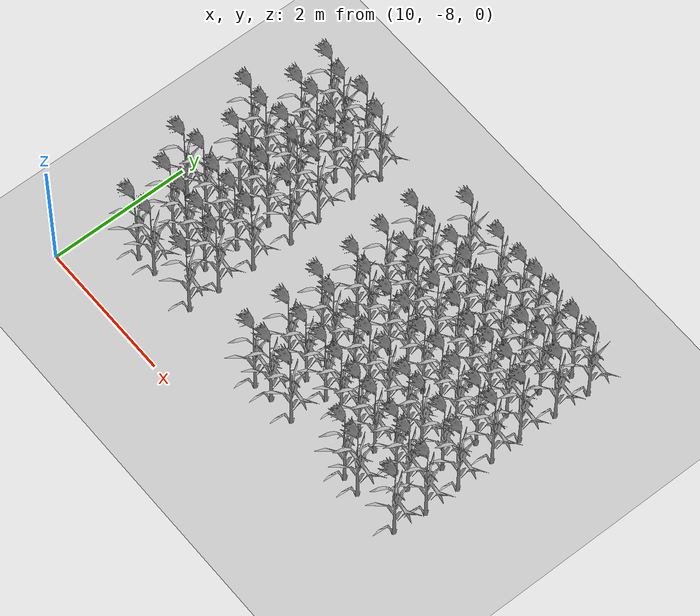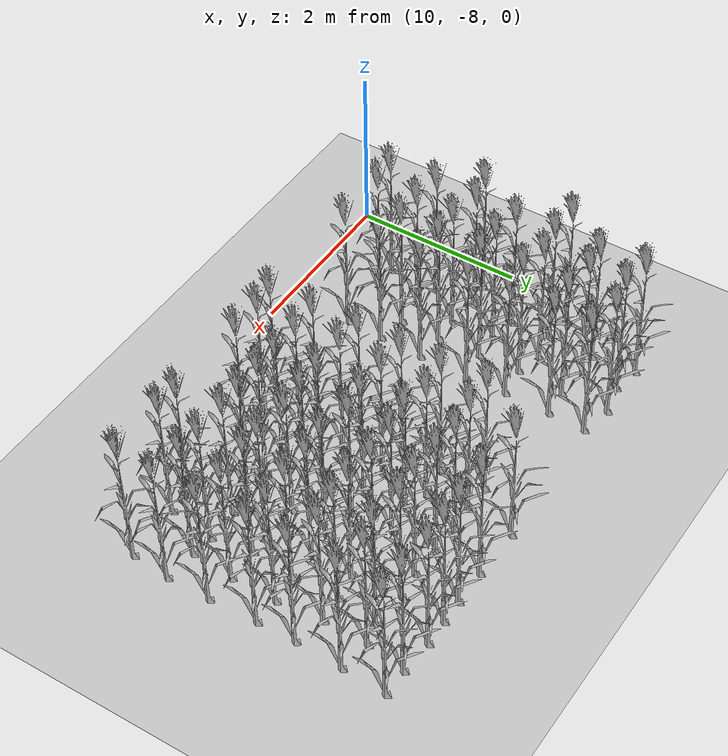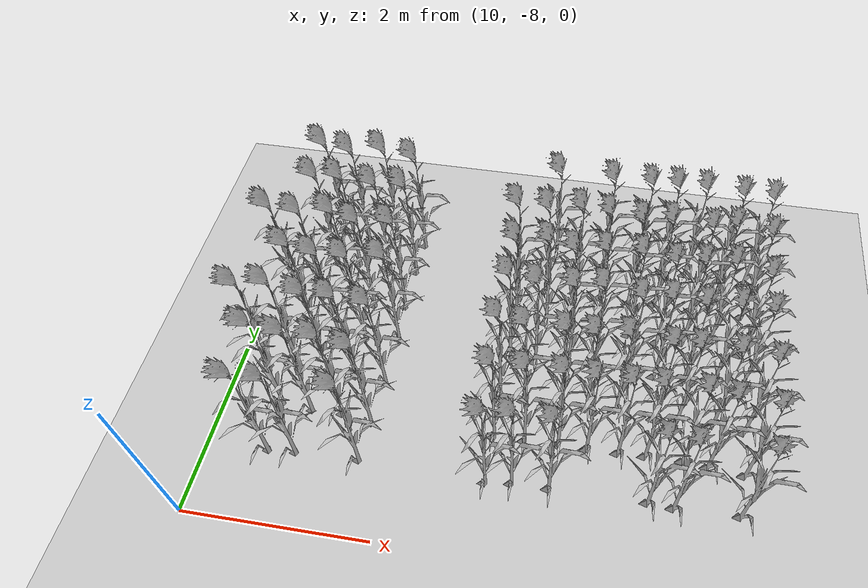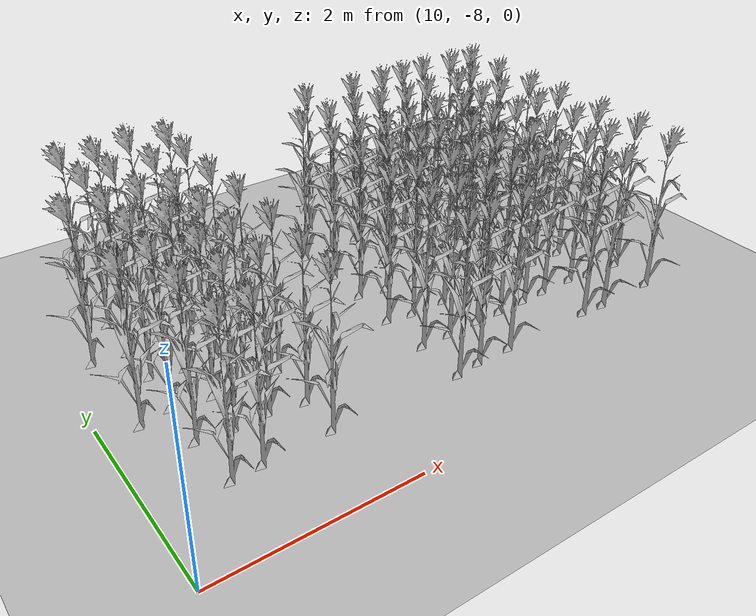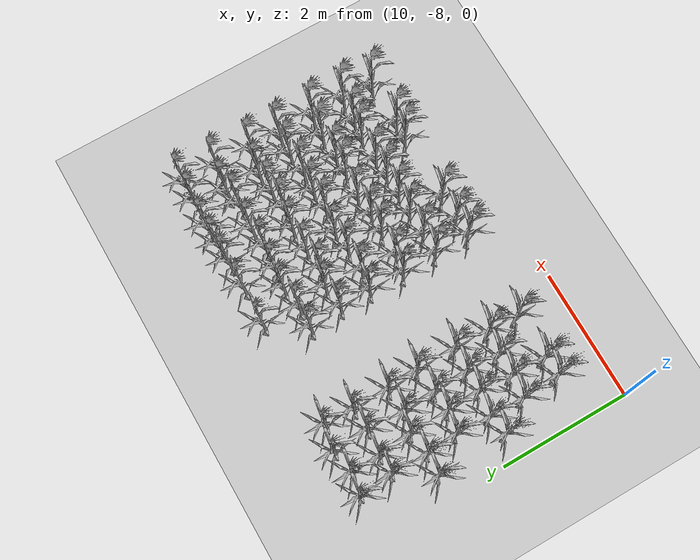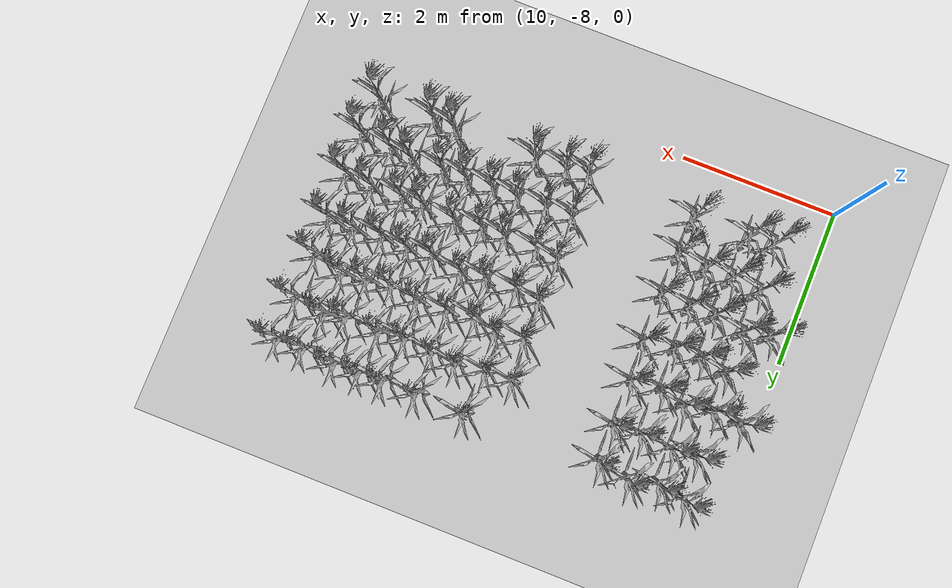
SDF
<sdf version="1.7">
 <world name="farmland_world">
  <model name="ground_plane">
   <static>1</static>
   <link name="link">
    <collision name="collision">
     <geometry><plane><normal>0 0 1</normal><size>40.0 40.0</size></plane></geometry>
     <surface><friction><ode><mu>100</mu><mu2>50</mu2></ode></friction></surface>
    </collision>
    <visual name="visual">
     <cast_shadows>0</cast_shadows>
     <geometry><plane><normal>0 0 1</normal><size>40.0 40.0</size></plane></geometry>
     <material>
      <script><uri>file://media/materials/scripts/gazebo.material</uri><name>Gazebo/Grey</name></script>
     </material>
    </visual>
   </link>
  </model>
  <model name="tree_3_396">
   <static>1</static>
   <link name="link">
    <collision name="collision">
     <geometry><mesh><uri>model://Corn_low_poly/corn.obj</uri><scale>1 1 1</scale></mesh></geometry>
     <surface><friction><ode><mu>100</mu><mu2>50</mu2></ode></friction></surface>
    </collision>
    <visual name="visual">
     <geometry><mesh><uri>model://Corn_low_poly/corn.obj</uri><scale>1 1 1</scale></mesh></geometry>
    </visual>
   </link>
   <pose>10.336218048798484 -5.094200831222233 0 0 0 0</pose>
  </model>
  <model name="tree_3_398">
   <static>1</static>
   <link name="link">
    <collision name="collision">
     <geometry><mesh><uri>model://Corn_low_poly/corn.obj</uri><scale>1 1 1</scale></mesh></geometry>
     <surface><friction><ode><mu>100</mu><mu2>50</mu2></ode></friction></surface>
    </collision>
    <visual name="visual">
     <geometry><mesh><uri>model://Corn_low_poly/corn.obj</uri><scale>1 1 1</scale></mesh></geometry>
    </visual>
   </link>
   <pose>10.364978905124246 -6.165531349344927 0 0 0 0</pose>
  </model>
  <model name="tree_3_424">
   <static>1</static>
   <link name="link">
    <collision name="collision">
     <geometry><mesh><uri>model://Corn_low_poly/corn.obj</uri><scale>1 1 1</scale></mesh></geometry>
     <surface><friction><ode><mu>100</mu><mu2>50</mu2></ode></friction></surface>
    </collision>
    <visual name="visual">
     <geometry><mesh><uri>model://Corn_low_poly/corn.obj</uri><scale>1 1 1</scale></mesh></geometry>
    </visual>
   </link>
   <pose>10.639512016288315 -4.056937963619303 0 0 0 0</pose>
  </model>
  <model name="tree_3_425">
   <static>1</static>
   <link name="link">
    <collision name="collision">
     <geometry><mesh><uri>model://Corn_low_poly/corn.obj</uri><scale>1 1 1</scale></mesh></geometry>
     <surface><friction><ode><mu>100</mu><mu2>50</mu2></ode></friction></surface>
    </collision>
    <visual name="visual">
     <geometry><mesh><uri>model://Corn_low_poly/corn.obj</uri><scale>1 1 1</scale></mesh></geometry>
    </visual>
   </link>
   <pose>10.685194346930286 -4.572476451612262 0 0 0 0</pose>
  </model>
  <model name="tree_3_426">
   <static>1</static>
   <link name="link">
    <collision name="collision">
     <geometry><mesh><uri>model://Corn_low_poly/corn.obj</uri><scale>1 1 1</scale></mesh></geometry>
     <surface><friction><ode><mu>100</mu><mu2>50</mu2></ode></friction></surface>
    </collision>
    <visual name="visual">
     <geometry><mesh><uri>model://Corn_low_poly/corn.obj</uri><scale>1 1 1</scale></mesh></geometry>
    </visual>
   </link>
   <pose>10.66991355195906 -5.120161488890562 0 0 0 0</pose>
  </model>
  <model name="tree_3_427">
   <static>1</static>
   <link name="link">
    <collision name="collision">
     <geometry><mesh><uri>model://Corn_low_poly/corn.obj</uri><scale>1 1 1</scale></mesh></geometry>
     <surface><friction><ode><mu>100</mu><mu2>50</mu2></ode></friction></surface>
    </collision>
    <visual name="visual">
     <geometry><mesh><uri>model://Corn_low_poly/corn.obj</uri><scale>1 1 1</scale></mesh></geometry>
    </visual>
   </link>
   <pose>10.699663897577226 -5.585120610117044 0 0 0 0</pose>
  </model>
  <model name="tree_3_428">
   <static>1</static>
   <link name="link">
    <collision name="collision">
     <geometry><mesh><uri>model://Corn_low_poly/corn.obj</uri><scale>1 1 1</scale></mesh></geometry>
     <surface><friction><ode><mu>100</mu><mu2>50</mu2></ode></friction></surface>
    </collision>
    <visual name="visual">
     <geometry><mesh><uri>model://Corn_low_poly/corn.obj</uri><scale>1 1 1</scale></mesh></geometry>
    </visual>
   </link>
   <pose>10.670386180392148 -6.099256254528978 0 0 0 0</pose>
  </model>
  <model name="tree_3_429">
   <static>1</static>
   <link name="link">
    <collision name="collision">
     <geometry><mesh><uri>model://Corn_low_poly/corn.obj</uri><scale>1 1 1</scale></mesh></geometry>
     <surface><friction><ode><mu>100</mu><mu2>50</mu2></ode></friction></surface>
    </collision>
    <visual name="visual">
     <geometry><mesh><uri>model://Corn_low_poly/corn.obj</uri><scale>1 1 1</scale></mesh></geometry>
    </visual>
   </link>
   <pose>10.66219176854286 -6.614461511317841 0 0 0 0</pose>
  </model>
  <model name="tree_3_430">
   <static>1</static>
   <link name="link">
    <collision name="collision">
     <geometry><mesh><uri>model://Corn_low_poly/corn.obj</uri><scale>1 1 1</scale></mesh></geometry>
     <surface><friction><ode><mu>100</mu><mu2>50</mu2></ode></friction></surface>
    </collision>
    <visual name="visual">
     <geometry><mesh><uri>model://Corn_low_poly/corn.obj</uri><scale>1 1 1</scale></mesh></geometry>
    </visual>
   </link>
   <pose>10.696855201788944 -7.192757625046726 0 0 0 0</pose>
  </model>
  <model name="tree_3_454">
   <static>1</static>
   <link name="link">
    <collision name="collision">
     <geometry><mesh><uri>model://Corn_low_poly/corn.obj</uri><scale>1 1 1</scale></mesh></geometry>
     <surface><friction><ode><mu>100</mu><mu2>50</mu2></ode></friction></surface>
    </collision>
    <visual name="visual">
     <geometry><mesh><uri>model://Corn_low_poly/corn.obj</uri><scale>1 1 1</scale></mesh></geometry>
    </visual>
   </link>
   <pose>10.9648317063201 -4.11793145990108 0 0 0 0</pose>
  </model>
  <model name="tree_3_455">
   <static>1</static>
   <link name="link">
    <collision name="collision">
     <geometry><mesh><uri>model://Corn_low_poly/corn.obj</uri><scale>1 1 1</scale></mesh></geometry>
     <surface><friction><ode><mu>100</mu><mu2>50</mu2></ode></friction></surface>
    </collision>
    <visual name="visual">
     <geometry><mesh><uri>model://Corn_low_poly/corn.obj</uri><scale>1 1 1</scale></mesh></geometry>
    </visual>
   </link>
   <pose>10.964125095030173 -4.545629775538938 0 0 0 0</pose>
  </model>
  <model name="tree_3_456">
   <static>1</static>
   <link name="link">
    <collision name="collision">
     <geometry><mesh><uri>model://Corn_low_poly/corn.obj</uri><scale>1 1 1</scale></mesh></geometry>
     <surface><friction><ode><mu>100</mu><mu2>50</mu2></ode></friction></surface>
    </collision>
    <visual name="visual">
     <geometry><mesh><uri>model://Corn_low_poly/corn.obj</uri><scale>1 1 1</scale></mesh></geometry>
    </visual>
   </link>
   <pose>11.01583983888011 -5.057956603693425 0 0 0 0</pose>
  </model>
  <model name="tree_3_457">
   <static>1</static>
   <link name="link">
    <collision name="collision">
     <geometry><mesh><uri>model://Corn_low_poly/corn.obj</uri><scale>1 1 1</scale></mesh></geometry>
     <surface><friction><ode><mu>100</mu><mu2>50</mu2></ode></friction></surface>
    </collision>
    <visual name="visual">
     <geometry><mesh><uri>model://Corn_low_poly/corn.obj</uri><scale>1 1 1</scale></mesh></geometry>
    </visual>
   </link>
   <pose>11.022003131946292 -5.649713077679194 0 0 0 0</pose>
  </model>
  <model name="tree_3_458">
   <static>1</static>
   <link name="link">
    <collision name="collision">
     <geometry><mesh><uri>model://Corn_low_poly/corn.obj</uri><scale>1 1 1</scale></mesh></geometry>
     <surface><friction><ode><mu>100</mu><mu2>50</mu2></ode></friction></surface>
    </collision>
    <visual name="visual">
     <geometry><mesh><uri>model://Corn_low_poly/corn.obj</uri><scale>1 1 1</scale></mesh></geometry>
    </visual>
   </link>
   <pose>11.048762684720245 -6.1627331046480345 0 0 0 0</pose>
  </model>
  <model name="tree_3_459">
   <static>1</static>
   <link name="link">
    <collision name="collision">
     <geometry><mesh><uri>model://Corn_low_poly/corn.obj</uri><scale>1 1 1</scale></mesh></geometry>
     <surface><friction><ode><mu>100</mu><mu2>50</mu2></ode></friction></surface>
    </collision>
    <visual name="visual">
     <geometry><mesh><uri>model://Corn_low_poly/corn.obj</uri><scale>1 1 1</scale></mesh></geometry>
    </visual>
   </link>
   <pose>11.00923089931044 -6.652047315434077 0 0 0 0</pose>
  </model>
  <model name="tree_3_460">
   <static>1</static>
   <link name="link">
    <collision name="collision">
     <geometry><mesh><uri>model://Corn_low_poly/corn.obj</uri><scale>1 1 1</scale></mesh></geometry>
     <surface><friction><ode><mu>100</mu><mu2>50</mu2></ode></friction></surface>
    </collision>
    <visual name="visual">
     <geometry><mesh><uri>model://Corn_low_poly/corn.obj</uri><scale>1 1 1</scale></mesh></geometry>
    </visual>
   </link>
   <pose>10.990459883604906 -7.172170484243245 0 0 0 0</pose>
  </model>
  <model name="tree_3_484">
   <static>1</static>
   <link name="link">
    <collision name="collision">
     <geometry><mesh><uri>model://Corn_low_poly/corn.obj</uri><scale>1 1 1</scale></mesh></geometry>
     <surface><friction><ode><mu>100</mu><mu2>50</mu2></ode></friction></surface>
    </collision>
    <visual name="visual">
     <geometry><mesh><uri>model://Corn_low_poly/corn.obj</uri><scale>1 1 1</scale></mesh></geometry>
    </visual>
   </link>
   <pose>11.323679801329236 -4.040140490413209 0 0 0 0</pose>
  </model>
  <model name="tree_3_485">
   <static>1</static>
   <link name="link">
    <collision name="collision">
     <geometry><mesh><uri>model://Corn_low_poly/corn.obj</uri><scale>1 1 1</scale></mesh></geometry>
     <surface><friction><ode><mu>100</mu><mu2>50</mu2></ode></friction></surface>
    </collision>
    <visual name="visual">
     <geometry><mesh><uri>model://Corn_low_poly/corn.obj</uri><scale>1 1 1</scale></mesh></geometry>
    </visual>
   </link>
   <pose>11.358111137347528 -4.5797726042161875 0 0 0 0</pose>
  </model>
  <model name="tree_3_486">
   <static>1</static>
   <link name="link">
    <collision name="collision">
     <geometry><mesh><uri>model://Corn_low_poly/corn.obj</uri><scale>1 1 1</scale></mesh></geometry>
     <surface><friction><ode><mu>100</mu><mu2>50</mu2></ode></friction></surface>
    </collision>
    <visual name="visual">
     <geometry><mesh><uri>model://Corn_low_poly/corn.obj</uri><scale>1 1 1</scale></mesh></geometry>
    </visual>
   </link>
   <pose>11.314591748215598 -5.145585300931483 0 0 0 0</pose>
  </model>
  <model name="tree_3_487">
   <static>1</static>
   <link name="link">
    <collision name="collision">
     <geometry><mesh><uri>model://Corn_low_poly/corn.obj</uri><scale>1 1 1</scale></mesh></geometry>
     <surface><friction><ode><mu>100</mu><mu2>50</mu2></ode></friction></surface>
    </collision>
    <visual name="visual">
     <geometry><mesh><uri>model://Corn_low_poly/corn.obj</uri><scale>1 1 1</scale></mesh></geometry>
    </visual>
   </link>
   <pose>11.340558021921161 -5.636150073698883 0 0 0 0</pose>
  </model>
  <model name="tree_3_488">
   <static>1</static>
   <link name="link">
    <collision name="collision">
     <geometry><mesh><uri>model://Corn_low_poly/corn.obj</uri><scale>1 1 1</scale></mesh></geometry>
     <surface><friction><ode><mu>100</mu><mu2>50</mu2></ode></friction></surface>
    </collision>
    <visual name="visual">
     <geometry><mesh><uri>model://Corn_low_poly/corn.obj</uri><scale>1 1 1</scale></mesh></geometry>
    </visual>
   </link>
   <pose>11.356837048338853 -6.153516317012827 0 0 0 0</pose>
  </model>
  <model name="tree_3_489">
   <static>1</static>
   <link name="link">
    <collision name="collision">
     <geometry><mesh><uri>model://Corn_low_poly/corn.obj</uri><scale>1 1 1</scale></mesh></geometry>
     <surface><friction><ode><mu>100</mu><mu2>50</mu2></ode></friction></surface>
    </collision>
    <visual name="visual">
     <geometry><mesh><uri>model://Corn_low_poly/corn.obj</uri><scale>1 1 1</scale></mesh></geometry>
    </visual>
   </link>
   <pose>11.343651279017987 -6.644243186238297 0 0 0 0</pose>
  </model>
  <model name="tree_3_514">
   <static>1</static>
   <link name="link">
    <collision name="collision">
     <geometry><mesh><uri>model://Corn_low_poly/corn.obj</uri><scale>1 1 1</scale></mesh></geometry>
     <surface><friction><ode><mu>100</mu><mu2>50</mu2></ode></friction></surface>
    </collision>
    <visual name="visual">
     <geometry><mesh><uri>model://Corn_low_poly/corn.obj</uri><scale>1 1 1</scale></mesh></geometry>
    </visual>
   </link>
   <pose>11.701671537641156 -4.117602815555624 0 0 0 0</pose>
  </model>
  <model name="tree_3_515">
   <static>1</static>
   <link name="link">
    <collision name="collision">
     <geometry><mesh><uri>model://Corn_low_poly/corn.obj</uri><scale>1 1 1</scale></mesh></geometry>
     <surface><friction><ode><mu>100</mu><mu2>50</mu2></ode></friction></surface>
    </collision>
    <visual name="visual">
     <geometry><mesh><uri>model://Corn_low_poly/corn.obj</uri><scale>1 1 1</scale></mesh></geometry>
    </visual>
   </link>
   <pose>11.686830380598925 -4.559062896399164 0 0 0 0</pose>
  </model>
  <model name="tree_3_516">
   <static>1</static>
   <link name="link">
    <collision name="collision">
     <geometry><mesh><uri>model://Corn_low_poly/corn.obj</uri><scale>1 1 1</scale></mesh></geometry>
     <surface><friction><ode><mu>100</mu><mu2>50</mu2></ode></friction></surface>
    </collision>
    <visual name="visual">
     <geometry><mesh><uri>model://Corn_low_poly/corn.obj</uri><scale>1 1 1</scale></mesh></geometry>
    </visual>
   </link>
   <pose>11.68184705127028 -5.10511617256318 0 0 0 0</pose>
  </model>
  <model name="tree_3_517">
   <static>1</static>
   <link name="link">
    <collision name="collision">
     <geometry><mesh><uri>model://Corn_low_poly/corn.obj</uri><scale>1 1 1</scale></mesh></geometry>
     <surface><friction><ode><mu>100</mu><mu2>50</mu2></ode></friction></surface>
    </collision>
    <visual name="visual">
     <geometry><mesh><uri>model://Corn_low_poly/corn.obj</uri><scale>1 1 1</scale></mesh></geometry>
    </visual>
   </link>
   <pose>11.718115829217936 -5.577669545844418 0 0 0 0</pose>
  </model>
  <model name="tree_3_518">
   <static>1</static>
   <link name="link">
    <collision name="collision">
     <geometry><mesh><uri>model://Corn_low_poly/corn.obj</uri><scale>1 1 1</scale></mesh></geometry>
     <surface><friction><ode><mu>100</mu><mu2>50</mu2></ode></friction></surface>
    </collision>
    <visual name="visual">
     <geometry><mesh><uri>model://Corn_low_poly/corn.obj</uri><scale>1 1 1</scale></mesh></geometry>
    </visual>
   </link>
   <pose>11.71119698187219 -6.173761108522401 0 0 0 0</pose>
  </model>
  <model name="tree_3_519">
   <static>1</static>
   <link name="link">
    <collision name="collision">
     <geometry><mesh><uri>model://Corn_low_poly/corn.obj</uri><scale>1 1 1</scale></mesh></geometry>
     <surface><friction><ode><mu>100</mu><mu2>50</mu2></ode></friction></surface>
    </collision>
    <visual name="visual">
     <geometry><mesh><uri>model://Corn_low_poly/corn.obj</uri><scale>1 1 1</scale></mesh></geometry>
    </visual>
   </link>
   <pose>11.690190794449508 -6.703854392125633 0 0 0 0</pose>
  </model>
  <model name="tree_3_520">
   <static>1</static>
   <link name="link">
    <collision name="collision">
     <geometry><mesh><uri>model://Corn_low_poly/corn.obj</uri><scale>1 1 1</scale></mesh></geometry>
     <surface><friction><ode><mu>100</mu><mu2>50</mu2></ode></friction></surface>
    </collision>
    <visual name="visual">
     <geometry><mesh><uri>model://Corn_low_poly/corn.obj</uri><scale>1 1 1</scale></mesh></geometry>
    </visual>
   </link>
   <pose>11.674239508467789 -7.151142483229025 0 0 0 0</pose>
  </model>
  <model name="tree_3_545">
   <static>1</static>
   <link name="link">
    <collision name="collision">
     <geometry><mesh><uri>model://Corn_low_poly/corn.obj</uri><scale>1 1 1</scale></mesh></geometry>
     <surface><friction><ode><mu>100</mu><mu2>50</mu2></ode></friction></surface>
    </collision>
    <visual name="visual">
     <geometry><mesh><uri>model://Corn_low_poly/corn.obj</uri><scale>1 1 1</scale></mesh></geometry>
    </visual>
   </link>
   <pose>12.973333467988091 -4.6026995636392725 0 0 0 0</pose>
  </model>
  <model name="tree_3_546">
   <static>1</static>
   <link name="link">
    <collision name="collision">
     <geometry><mesh><uri>model://Corn_low_poly/corn.obj</uri><scale>1 1 1</scale></mesh></geometry>
     <surface><friction><ode><mu>100</mu><mu2>50</mu2></ode></friction></surface>
    </collision>
    <visual name="visual">
     <geometry><mesh><uri>model://Corn_low_poly/corn.obj</uri><scale>1 1 1</scale></mesh></geometry>
    </visual>
   </link>
   <pose>13.0256012662643 -5.106654554766997 0 0 0 0</pose>
  </model>
  <model name="tree_3_547">
   <static>1</static>
   <link name="link">
    <collision name="collision">
     <geometry><mesh><uri>model://Corn_low_poly/corn.obj</uri><scale>1 1 1</scale></mesh></geometry>
     <surface><friction><ode><mu>100</mu><mu2>50</mu2></ode></friction></surface>
    </collision>
    <visual name="visual">
     <geometry><mesh><uri>model://Corn_low_poly/corn.obj</uri><scale>1 1 1</scale></mesh></geometry>
    </visual>
   </link>
   <pose>13.028539159351665 -5.57932204582108 0 0 0 0</pose>
  </model>
  <model name="tree_3_548">
   <static>1</static>
   <link name="link">
    <collision name="collision">
     <geometry><mesh><uri>model://Corn_low_poly/corn.obj</uri><scale>1 1 1</scale></mesh></geometry>
     <surface><friction><ode><mu>100</mu><mu2>50</mu2></ode></friction></surface>
    </collision>
    <visual name="visual">
     <geometry><mesh><uri>model://Corn_low_poly/corn.obj</uri><scale>1 1 1</scale></mesh></geometry>
    </visual>
   </link>
   <pose>13.004693352594819 -6.107792621462087 0 0 0 0</pose>
  </model>
  <model name="tree_3_549">
   <static>1</static>
   <link name="link">
    <collision name="collision">
     <geometry><mesh><uri>model://Corn_low_poly/corn.obj</uri><scale>1 1 1</scale></mesh></geometry>
     <surface><friction><ode><mu>100</mu><mu2>50</mu2></ode></friction></surface>
    </collision>
    <visual name="visual">
     <geometry><mesh><uri>model://Corn_low_poly/corn.obj</uri><scale>1 1 1</scale></mesh></geometry>
    </visual>
   </link>
   <pose>13.03021065732193 -6.650128920363454 0 0 0 0</pose>
  </model>
  <model name="tree_3_550">
   <static>1</static>
   <link name="link">
    <collision name="collision">
     <geometry><mesh><uri>model://Corn_low_poly/corn.obj</uri><scale>1 1 1</scale></mesh></geometry>
     <surface><friction><ode><mu>100</mu><mu2>50</mu2></ode></friction></surface>
    </collision>
    <visual name="visual">
     <geometry><mesh><uri>model://Corn_low_poly/corn.obj</uri><scale>1 1 1</scale></mesh></geometry>
    </visual>
   </link>
   <pose>13.028422442069761 -7.186816319407242 0 0 0 0</pose>
  </model>
  <model name="tree_3_574">
   <static>1</static>
   <link name="link">
    <collision name="collision">
     <geometry><mesh><uri>model://Corn_low_poly/corn.obj</uri><scale>1 1 1</scale></mesh></geometry>
     <surface><friction><ode><mu>100</mu><mu2>50</mu2></ode></friction></surface>
    </collision>
    <visual name="visual">
     <geometry><mesh><uri>model://Corn_low_poly/corn.obj</uri><scale>1 1 1</scale></mesh></geometry>
    </visual>
   </link>
   <pose>13.362048626380304 -4.053391209669485 0 0 0 0</pose>
  </model>
  <model name="tree_3_575">
   <static>1</static>
   <link name="link">
    <collision name="collision">
     <geometry><mesh><uri>model://Corn_low_poly/corn.obj</uri><scale>1 1 1</scale></mesh></geometry>
     <surface><friction><ode><mu>100</mu><mu2>50</mu2></ode></friction></surface>
    </collision>
    <visual name="visual">
     <geometry><mesh><uri>model://Corn_low_poly/corn.obj</uri><scale>1 1 1</scale></mesh></geometry>
    </visual>
   </link>
   <pose>13.303220471084744 -4.606811546169486 0 0 0 0</pose>
  </model>
  <model name="tree_3_576">
   <static>1</static>
   <link name="link">
    <collision name="collision">
     <geometry><mesh><uri>model://Corn_low_poly/corn.obj</uri><scale>1 1 1</scale></mesh></geometry>
     <surface><friction><ode><mu>100</mu><mu2>50</mu2></ode></friction></surface>
    </collision>
    <visual name="visual">
     <geometry><mesh><uri>model://Corn_low_poly/corn.obj</uri><scale>1 1 1</scale></mesh></geometry>
    </visual>
   </link>
   <pose>13.372809358297308 -5.064854324321445 0 0 0 0</pose>
  </model>
  <model name="tree_3_577">
   <static>1</static>
   <link name="link">
    <collision name="collision">
     <geometry><mesh><uri>model://Corn_low_poly/corn.obj</uri><scale>1 1 1</scale></mesh></geometry>
     <surface><friction><ode><mu>100</mu><mu2>50</mu2></ode></friction></surface>
    </collision>
    <visual name="visual">
     <geometry><mesh><uri>model://Corn_low_poly/corn.obj</uri><scale>1 1 1</scale></mesh></geometry>
    </visual>
   </link>
   <pose>13.326930141010047 -5.628971929911491 0 0 0 0</pose>
  </model>
  <model name="tree_3_578">
   <static>1</static>
   <link name="link">
    <collision name="collision">
     <geometry><mesh><uri>model://Corn_low_poly/corn.obj</uri><scale>1 1 1</scale></mesh></geometry>
     <surface><friction><ode><mu>100</mu><mu2>50</mu2></ode></friction></surface>
    </collision>
    <visual name="visual">
     <geometry><mesh><uri>model://Corn_low_poly/corn.obj</uri><scale>1 1 1</scale></mesh></geometry>
    </visual>
   </link>
   <pose>13.280248586602667 -6.153067110310561 0 0 0 0</pose>
  </model>
  <model name="tree_3_579">
   <static>1</static>
   <link name="link">
    <collision name="collision">
     <geometry><mesh><uri>model://Corn_low_poly/corn.obj</uri><scale>1 1 1</scale></mesh></geometry>
     <surface><friction><ode><mu>100</mu><mu2>50</mu2></ode></friction></surface>
    </collision>
    <visual name="visual">
     <geometry><mesh><uri>model://Corn_low_poly/corn.obj</uri><scale>1 1 1</scale></mesh></geometry>
    </visual>
   </link>
   <pose>13.356949761012414 -6.642062813264465 0 0 0 0</pose>
  </model>
  <model name="tree_3_580">
   <static>1</static>
   <link name="link">
    <collision name="collision">
     <geometry><mesh><uri>model://Corn_low_poly/corn.obj</uri><scale>1 1 1</scale></mesh></geometry>
     <surface><friction><ode><mu>100</mu><mu2>50</mu2></ode></friction></surface>
    </collision>
    <visual name="visual">
     <geometry><mesh><uri>model://Corn_low_poly/corn.obj</uri><scale>1 1 1</scale></mesh></geometry>
    </visual>
   </link>
   <pose>13.299707691747791 -7.151194713686633 0 0 0 0</pose>
  </model>
  <model name="tree_3_605">
   <static>1</static>
   <link name="link">
    <collision name="collision">
     <geometry><mesh><uri>model://Corn_low_poly/corn.obj</uri><scale>1 1 1</scale></mesh></geometry>
     <surface><friction><ode><mu>100</mu><mu2>50</mu2></ode></friction></surface>
    </collision>
    <visual name="visual">
     <geometry><mesh><uri>model://Corn_low_poly/corn.obj</uri><scale>1 1 1</scale></mesh></geometry>
    </visual>
   </link>
   <pose>13.662442518797548 -4.552273830618049 0 0 0 0</pose>
  </model>
  <model name="tree_3_606">
   <static>1</static>
   <link name="link">
    <collision name="collision">
     <geometry><mesh><uri>model://Corn_low_poly/corn.obj</uri><scale>1 1 1</scale></mesh></geometry>
     <surface><friction><ode><mu>100</mu><mu2>50</mu2></ode></friction></surface>
    </collision>
    <visual name="visual">
     <geometry><mesh><uri>model://Corn_low_poly/corn.obj</uri><scale>1 1 1</scale></mesh></geometry>
    </visual>
   </link>
   <pose>13.647860444133775 -5.140667136162928 0 0 0 0</pose>
  </model>
  <model name="tree_3_607">
   <static>1</static>
   <link name="link">
    <collision name="collision">
     <geometry><mesh><uri>model://Corn_low_poly/corn.obj</uri><scale>1 1 1</scale></mesh></geometry>
     <surface><friction><ode><mu>100</mu><mu2>50</mu2></ode></friction></surface>
    </collision>
    <visual name="visual">
     <geometry><mesh><uri>model://Corn_low_poly/corn.obj</uri><scale>1 1 1</scale></mesh></geometry>
    </visual>
   </link>
   <pose>13.704285771037133 -5.614342299438126 0 0 0 0</pose>
  </model>
  <model name="tree_3_608">
   <static>1</static>
   <link name="link">
    <collision name="collision">
     <geometry><mesh><uri>model://Corn_low_poly/corn.obj</uri><scale>1 1 1</scale></mesh></geometry>
     <surface><friction><ode><mu>100</mu><mu2>50</mu2></ode></friction></surface>
    </collision>
    <visual name="visual">
     <geometry><mesh><uri>model://Corn_low_poly/corn.obj</uri><scale>1 1 1</scale></mesh></geometry>
    </visual>
   </link>
   <pose>13.683876366615728 -6.1499050452789215 0 0 0 0</pose>
  </model>
  <model name="tree_3_609">
   <static>1</static>
   <link name="link">
    <collision name="collision">
     <geometry><mesh><uri>model://Corn_low_poly/corn.obj</uri><scale>1 1 1</scale></mesh></geometry>
     <surface><friction><ode><mu>100</mu><mu2>50</mu2></ode></friction></surface>
    </collision>
    <visual name="visual">
     <geometry><mesh><uri>model://Corn_low_poly/corn.obj</uri><scale>1 1 1</scale></mesh></geometry>
    </visual>
   </link>
   <pose>13.717556452598245 -6.631452997187212 0 0 0 0</pose>
  </model>
  <model name="tree_3_610">
   <static>1</static>
   <link name="link">
    <collision name="collision">
     <geometry><mesh><uri>model://Corn_low_poly/corn.obj</uri><scale>1 1 1</scale></mesh></geometry>
     <surface><friction><ode><mu>100</mu><mu2>50</mu2></ode></friction></surface>
    </collision>
    <visual name="visual">
     <geometry><mesh><uri>model://Corn_low_poly/corn.obj</uri><scale>1 1 1</scale></mesh></geometry>
    </visual>
   </link>
   <pose>13.686247237658826 -7.146211742979358 0 0 0 0</pose>
  </model>
  <model name="tree_3_634">
   <static>1</static>
   <link name="link">
    <collision name="collision">
     <geometry><mesh><uri>model://Corn_low_poly/corn.obj</uri><scale>1 1 1</scale></mesh></geometry>
     <surface><friction><ode><mu>100</mu><mu2>50</mu2></ode></friction></surface>
    </collision>
    <visual name="visual">
     <geometry><mesh><uri>model://Corn_low_poly/corn.obj</uri><scale>1 1 1</scale></mesh></geometry>
    </visual>
   </link>
   <pose>13.96100164887867 -4.070900392053125 0 0 0 0</pose>
  </model>
  <model name="tree_3_635">
   <static>1</static>
   <link name="link">
    <collision name="collision">
     <geometry><mesh><uri>model://Corn_low_poly/corn.obj</uri><scale>1 1 1</scale></mesh></geometry>
     <surface><friction><ode><mu>100</mu><mu2>50</mu2></ode></friction></surface>
    </collision>
    <visual name="visual">
     <geometry><mesh><uri>model://Corn_low_poly/corn.obj</uri><scale>1 1 1</scale></mesh></geometry>
    </visual>
   </link>
   <pose>13.964419033229158 -4.582783316240148 0 0 0 0</pose>
  </model>
  <model name="tree_3_636">
   <static>1</static>
   <link name="link">
    <collision name="collision">
     <geometry><mesh><uri>model://Corn_low_poly/corn.obj</uri><scale>1 1 1</scale></mesh></geometry>
     <surface><friction><ode><mu>100</mu><mu2>50</mu2></ode></friction></surface>
    </collision>
    <visual name="visual">
     <geometry><mesh><uri>model://Corn_low_poly/corn.obj</uri><scale>1 1 1</scale></mesh></geometry>
    </visual>
   </link>
   <pose>13.97804751114317 -5.096805864519634 0 0 0 0</pose>
  </model>
  <model name="tree_3_637">
   <static>1</static>
   <link name="link">
    <collision name="collision">
     <geometry><mesh><uri>model://Corn_low_poly/corn.obj</uri><scale>1 1 1</scale></mesh></geometry>
     <surface><friction><ode><mu>100</mu><mu2>50</mu2></ode></friction></surface>
    </collision>
    <visual name="visual">
     <geometry><mesh><uri>model://Corn_low_poly/corn.obj</uri><scale>1 1 1</scale></mesh></geometry>
    </visual>
   </link>
   <pose>13.996425283396551 -5.5718334315287965 0 0 0 0</pose>
  </model>
  <model name="tree_3_638">
   <static>1</static>
   <link name="link">
    <collision name="collision">
     <geometry><mesh><uri>model://Corn_low_poly/corn.obj</uri><scale>1 1 1</scale></mesh></geometry>
     <surface><friction><ode><mu>100</mu><mu2>50</mu2></ode></friction></surface>
    </collision>
    <visual name="visual">
     <geometry><mesh><uri>model://Corn_low_poly/corn.obj</uri><scale>1 1 1</scale></mesh></geometry>
    </visual>
   </link>
   <pose>13.967842248840828 -6.147661090058077 0 0 0 0</pose>
  </model>
  <model name="tree_3_639">
   <static>1</static>
   <link name="link">
    <collision name="collision">
     <geometry><mesh><uri>model://Corn_low_poly/corn.obj</uri><scale>1 1 1</scale></mesh></geometry>
     <surface><friction><ode><mu>100</mu><mu2>50</mu2></ode></friction></surface>
    </collision>
    <visual name="visual">
     <geometry><mesh><uri>model://Corn_low_poly/corn.obj</uri><scale>1 1 1</scale></mesh></geometry>
    </visual>
   </link>
   <pose>14.022913458587622 -6.6320131178994535 0 0 0 0</pose>
  </model>
  <model name="tree_3_664">
   <static>1</static>
   <link name="link">
    <collision name="collision">
     <geometry><mesh><uri>model://Corn_low_poly/corn.obj</uri><scale>1 1 1</scale></mesh></geometry>
     <surface><friction><ode><mu>100</mu><mu2>50</mu2></ode></friction></surface>
    </collision>
    <visual name="visual">
     <geometry><mesh><uri>model://Corn_low_poly/corn.obj</uri><scale>1 1 1</scale></mesh></geometry>
    </visual>
   </link>
   <pose>14.376064588326537 -4.0679938116618946 0 0 0 0</pose>
  </model>
  <model name="tree_3_665">
   <static>1</static>
   <link name="link">
    <collision name="collision">
     <geometry><mesh><uri>model://Corn_low_poly/corn.obj</uri><scale>1 1 1</scale></mesh></geometry>
     <surface><friction><ode><mu>100</mu><mu2>50</mu2></ode></friction></surface>
    </collision>
    <visual name="visual">
     <geometry><mesh><uri>model://Corn_low_poly/corn.obj</uri><scale>1 1 1</scale></mesh></geometry>
    </visual>
   </link>
   <pose>14.309912556223091 -4.615176712407453 0 0 0 0</pose>
  </model>
  <model name="tree_3_666">
   <static>1</static>
   <link name="link">
    <collision name="collision">
     <geometry><mesh><uri>model://Corn_low_poly/corn.obj</uri><scale>1 1 1</scale></mesh></geometry>
     <surface><friction><ode><mu>100</mu><mu2>50</mu2></ode></friction></surface>
    </collision>
    <visual name="visual">
     <geometry><mesh><uri>model://Corn_low_poly/corn.obj</uri><scale>1 1 1</scale></mesh></geometry>
    </visual>
   </link>
   <pose>14.348928358824143 -5.0796765415893805 0 0 0 0</pose>
  </model>
  <model name="tree_3_667">
   <static>1</static>
   <link name="link">
    <collision name="collision">
     <geometry><mesh><uri>model://Corn_low_poly/corn.obj</uri><scale>1 1 1</scale></mesh></geometry>
     <surface><friction><ode><mu>100</mu><mu2>50</mu2></ode></friction></surface>
    </collision>
    <visual name="visual">
     <geometry><mesh><uri>model://Corn_low_poly/corn.obj</uri><scale>1 1 1</scale></mesh></geometry>
    </visual>
   </link>
   <pose>14.378284901023278 -5.635256509495291 0 0 0 0</pose>
  </model>
  <model name="tree_3_668">
   <static>1</static>
   <link name="link">
    <collision name="collision">
     <geometry><mesh><uri>model://Corn_low_poly/corn.obj</uri><scale>1 1 1</scale></mesh></geometry>
     <surface><friction><ode><mu>100</mu><mu2>50</mu2></ode></friction></surface>
    </collision>
    <visual name="visual">
     <geometry><mesh><uri>model://Corn_low_poly/corn.obj</uri><scale>1 1 1</scale></mesh></geometry>
    </visual>
   </link>
   <pose>14.290776909678383 -6.11059610352139 0 0 0 0</pose>
  </model>
  <model name="tree_3_669">
   <static>1</static>
   <link name="link">
    <collision name="collision">
     <geometry><mesh><uri>model://Corn_low_poly/corn.obj</uri><scale>1 1 1</scale></mesh></geometry>
     <surface><friction><ode><mu>100</mu><mu2>50</mu2></ode></friction></surface>
    </collision>
    <visual name="visual">
     <geometry><mesh><uri>model://Corn_low_poly/corn.obj</uri><scale>1 1 1</scale></mesh></geometry>
    </visual>
   </link>
   <pose>14.357675790165164 -6.6269579241328245 0 0 0 0</pose>
  </model>
  <model name="tree_3_694">
   <static>1</static>
   <link name="link">
    <collision name="collision">
     <geometry><mesh><uri>model://Corn_low_poly/corn.obj</uri><scale>1 1 1</scale></mesh></geometry>
     <surface><friction><ode><mu>100</mu><mu2>50</mu2></ode></friction></surface>
    </collision>
    <visual name="visual">
     <geometry><mesh><uri>model://Corn_low_poly/corn.obj</uri><scale>1 1 1</scale></mesh></geometry>
    </visual>
   </link>
   <pose>14.661774427005225 -4.063036237658269 0 0 0 0</pose>
  </model>
  <model name="tree_3_695">
   <static>1</static>
   <link name="link">
    <collision name="collision">
     <geometry><mesh><uri>model://Corn_low_poly/corn.obj</uri><scale>1 1 1</scale></mesh></geometry>
     <surface><friction><ode><mu>100</mu><mu2>50</mu2></ode></friction></surface>
    </collision>
    <visual name="visual">
     <geometry><mesh><uri>model://Corn_low_poly/corn.obj</uri><scale>1 1 1</scale></mesh></geometry>
    </visual>
   </link>
   <pose>14.624652621953096 -4.578422048309276 0 0 0 0</pose>
  </model>
  <model name="tree_3_696">
   <static>1</static>
   <link name="link">
    <collision name="collision">
     <geometry><mesh><uri>model://Corn_low_poly/corn.obj</uri><scale>1 1 1</scale></mesh></geometry>
     <surface><friction><ode><mu>100</mu><mu2>50</mu2></ode></friction></surface>
    </collision>
    <visual name="visual">
     <geometry><mesh><uri>model://Corn_low_poly/corn.obj</uri><scale>1 1 1</scale></mesh></geometry>
    </visual>
   </link>
   <pose>14.682385484658399 -5.130272797321312 0 0 0 0</pose>
  </model>
  <model name="tree_3_697">
   <static>1</static>
   <link name="link">
    <collision name="collision">
     <geometry><mesh><uri>model://Corn_low_poly/corn.obj</uri><scale>1 1 1</scale></mesh></geometry>
     <surface><friction><ode><mu>100</mu><mu2>50</mu2></ode></friction></surface>
    </collision>
    <visual name="visual">
     <geometry><mesh><uri>model://Corn_low_poly/corn.obj</uri><scale>1 1 1</scale></mesh></geometry>
    </visual>
   </link>
   <pose>14.678555289023453 -5.605320594685477 0 0 0 0</pose>
  </model>
  <model name="tree_3_698">
   <static>1</static>
   <link name="link">
    <collision name="collision">
     <geometry><mesh><uri>model://Corn_low_poly/corn.obj</uri><scale>1 1 1</scale></mesh></geometry>
     <surface><friction><ode><mu>100</mu><mu2>50</mu2></ode></friction></surface>
    </collision>
    <visual name="visual">
     <geometry><mesh><uri>model://Corn_low_poly/corn.obj</uri><scale>1 1 1</scale></mesh></geometry>
    </visual>
   </link>
   <pose>14.708968007814974 -6.150262935796681 0 0 0 0</pose>
  </model>
  <model name="tree_3_699">
   <static>1</static>
   <link name="link">
    <collision name="collision">
     <geometry><mesh><uri>model://Corn_low_poly/corn.obj</uri><scale>1 1 1</scale></mesh></geometry>
     <surface><friction><ode><mu>100</mu><mu2>50</mu2></ode></friction></surface>
    </collision>
    <visual name="visual">
     <geometry><mesh><uri>model://Corn_low_poly/corn.obj</uri><scale>1 1 1</scale></mesh></geometry>
    </visual>
   </link>
   <pose>14.64401474435809 -6.615564851073522 0 0 0 0</pose>
  </model>
  <model name="tree_3_700">
   <static>1</static>
   <link name="link">
    <collision name="collision">
     <geometry><mesh><uri>model://Corn_low_poly/corn.obj</uri><scale>1 1 1</scale></mesh></geometry>
     <surface><friction><ode><mu>100</mu><mu2>50</mu2></ode></friction></surface>
    </collision>
    <visual name="visual">
     <geometry><mesh><uri>model://Corn_low_poly/corn.obj</uri><scale>1 1 1</scale></mesh></geometry>
    </visual>
   </link>
   <pose>14.70290876201942 -7.132494819307113 0 0 0 0</pose>
  </model>
  <model name="tree_3_724">
   <static>1</static>
   <link name="link">
    <collision name="collision">
     <geometry><mesh><uri>model://Corn_low_poly/corn.obj</uri><scale>1 1 1</scale></mesh></geometry>
     <surface><friction><ode><mu>100</mu><mu2>50</mu2></ode></friction></surface>
    </collision>
    <visual name="visual">
     <geometry><mesh><uri>model://Corn_low_poly/corn.obj</uri><scale>1 1 1</scale></mesh></geometry>
    </visual>
   </link>
   <pose>14.96808968707879 -4.0529678562189995 0 0 0 0</pose>
  </model>
  <model name="tree_3_725">
   <static>1</static>
   <link name="link">
    <collision name="collision">
     <geometry><mesh><uri>model://Corn_low_poly/corn.obj</uri><scale>1 1 1</scale></mesh></geometry>
     <surface><friction><ode><mu>100</mu><mu2>50</mu2></ode></friction></surface>
    </collision>
    <visual name="visual">
     <geometry><mesh><uri>model://Corn_low_poly/corn.obj</uri><scale>1 1 1</scale></mesh></geometry>
    </visual>
   </link>
   <pose>15.044365500128674 -4.603560600503425 0 0 0 0</pose>
  </model>
  <model name="tree_3_726">
   <static>1</static>
   <link name="link">
    <collision name="collision">
     <geometry><mesh><uri>model://Corn_low_poly/corn.obj</uri><scale>1 1 1</scale></mesh></geometry>
     <surface><friction><ode><mu>100</mu><mu2>50</mu2></ode></friction></surface>
    </collision>
    <visual name="visual">
     <geometry><mesh><uri>model://Corn_low_poly/corn.obj</uri><scale>1 1 1</scale></mesh></geometry>
    </visual>
   </link>
   <pose>14.98064351666558 -5.09184756378285 0 0 0 0</pose>
  </model>
  <model name="tree_3_727">
   <static>1</static>
   <link name="link">
    <collision name="collision">
     <geometry><mesh><uri>model://Corn_low_poly/corn.obj</uri><scale>1 1 1</scale></mesh></geometry>
     <surface><friction><ode><mu>100</mu><mu2>50</mu2></ode></friction></surface>
    </collision>
    <visual name="visual">
     <geometry><mesh><uri>model://Corn_low_poly/corn.obj</uri><scale>1 1 1</scale></mesh></geometry>
    </visual>
   </link>
   <pose>15.005513035223473 -5.628273109498325 0 0 0 0</pose>
  </model>
  <model name="tree_3_728">
   <static>1</static>
   <link name="link">
    <collision name="collision">
     <geometry><mesh><uri>model://Corn_low_poly/corn.obj</uri><scale>1 1 1</scale></mesh></geometry>
     <surface><friction><ode><mu>100</mu><mu2>50</mu2></ode></friction></surface>
    </collision>
    <visual name="visual">
     <geometry><mesh><uri>model://Corn_low_poly/corn.obj</uri><scale>1 1 1</scale></mesh></geometry>
    </visual>
   </link>
   <pose>14.957975852023498 -6.1384324609370475 0 0 0 0</pose>
  </model>
  <model name="tree_3_729">
   <static>1</static>
   <link name="link">
    <collision name="collision">
     <geometry><mesh><uri>model://Corn_low_poly/corn.obj</uri><scale>1 1 1</scale></mesh></geometry>
     <surface><friction><ode><mu>100</mu><mu2>50</mu2></ode></friction></surface>
    </collision>
    <visual name="visual">
     <geometry><mesh><uri>model://Corn_low_poly/corn.obj</uri><scale>1 1 1</scale></mesh></geometry>
    </visual>
   </link>
   <pose>15.040373229453712 -6.607976098679417 0 0 0 0</pose>
  </model>
  <model name="tree_3_730">
   <static>1</static>
   <link name="link">
    <collision name="collision">
     <geometry><mesh><uri>model://Corn_low_poly/corn.obj</uri><scale>1 1 1</scale></mesh></geometry>
     <surface><friction><ode><mu>100</mu><mu2>50</mu2></ode></friction></surface>
    </collision>
    <visual name="visual">
     <geometry><mesh><uri>model://Corn_low_poly/corn.obj</uri><scale>1 1 1</scale></mesh></geometry>
    </visual>
   </link>
   <pose>14.967813824659745 -7.148498634310571 0 0 0 0</pose>
  </model>
  <model name="tree_3_754">
   <static>1</static>
   <link name="link">
    <collision name="collision">
     <geometry><mesh><uri>model://Corn_low_poly/corn.obj</uri><scale>1 1 1</scale></mesh></geometry>
     <surface><friction><ode><mu>100</mu><mu2>50</mu2></ode></friction></surface>
    </collision>
    <visual name="visual">
     <geometry><mesh><uri>model://Corn_low_poly/corn.obj</uri><scale>1 1 1</scale></mesh></geometry>
    </visual>
   </link>
   <pose>15.366553184519264 -4.0823404695754 0 0 0 0</pose>
  </model>
  <model name="tree_3_755">
   <static>1</static>
   <link name="link">
    <collision name="collision">
     <geometry><mesh><uri>model://Corn_low_poly/corn.obj</uri><scale>1 1 1</scale></mesh></geometry>
     <surface><friction><ode><mu>100</mu><mu2>50</mu2></ode></friction></surface>
    </collision>
    <visual name="visual">
     <geometry><mesh><uri>model://Corn_low_poly/corn.obj</uri><scale>1 1 1</scale></mesh></geometry>
    </visual>
   </link>
   <pose>15.29446214258386 -4.5399749567532925 0 0 0 0</pose>
  </model>
  <model name="tree_3_756">
   <static>1</static>
   <link name="link">
    <collision name="collision">
     <geometry><mesh><uri>model://Corn_low_poly/corn.obj</uri><scale>1 1 1</scale></mesh></geometry>
     <surface><friction><ode><mu>100</mu><mu2>50</mu2></ode></friction></surface>
    </collision>
    <visual name="visual">
     <geometry><mesh><uri>model://Corn_low_poly/corn.obj</uri><scale>1 1 1</scale></mesh></geometry>
    </visual>
   </link>
   <pose>15.28395549840793 -5.0606811542039045 0 0 0 0</pose>
  </model>
  <model name="tree_3_757">
   <static>1</static>
   <link name="link">
    <collision name="collision">
     <geometry><mesh><uri>model://Corn_low_poly/corn.obj</uri><scale>1 1 1</scale></mesh></geometry>
     <surface><friction><ode><mu>100</mu><mu2>50</mu2></ode></friction></surface>
    </collision>
    <visual name="visual">
     <geometry><mesh><uri>model://Corn_low_poly/corn.obj</uri><scale>1 1 1</scale></mesh></geometry>
    </visual>
   </link>
   <pose>15.342009638734265 -5.591539515972531 0 0 0 0</pose>
  </model>
  <model name="tree_3_758">
   <static>1</static>
   <link name="link">
    <collision name="collision">
     <geometry><mesh><uri>model://Corn_low_poly/corn.obj</uri><scale>1 1 1</scale></mesh></geometry>
     <surface><friction><ode><mu>100</mu><mu2>50</mu2></ode></friction></surface>
    </collision>
    <visual name="visual">
     <geometry><mesh><uri>model://Corn_low_poly/corn.obj</uri><scale>1 1 1</scale></mesh></geometry>
    </visual>
   </link>
   <pose>15.3426561153373 -6.127949588265468 0 0 0 0</pose>
  </model>
  <model name="tree_3_759">
   <static>1</static>
   <link name="link">
    <collision name="collision">
     <geometry><mesh><uri>model://Corn_low_poly/corn.obj</uri><scale>1 1 1</scale></mesh></geometry>
     <surface><friction><ode><mu>100</mu><mu2>50</mu2></ode></friction></surface>
    </collision>
    <visual name="visual">
     <geometry><mesh><uri>model://Corn_low_poly/corn.obj</uri><scale>1 1 1</scale></mesh></geometry>
    </visual>
   </link>
   <pose>15.299807814927176 -6.636053536548647 0 0 0 0</pose>
  </model>
  <model name="tree_3_784">
   <static>1</static>
   <link name="link">
    <collision name="collision">
     <geometry><mesh><uri>model://Corn_low_poly/corn.obj</uri><scale>1 1 1</scale></mesh></geometry>
     <surface><friction><ode><mu>100</mu><mu2>50</mu2></ode></friction></surface>
    </collision>
    <visual name="visual">
     <geometry><mesh><uri>model://Corn_low_poly/corn.obj</uri><scale>1 1 1</scale></mesh></geometry>
    </visual>
   </link>
   <pose>15.68209958997422 -4.08395196266284 0 0 0 0</pose>
  </model>
  <model name="tree_3_785">
   <static>1</static>
   <link name="link">
    <collision name="collision">
     <geometry><mesh><uri>model://Corn_low_poly/corn.obj</uri><scale>1 1 1</scale></mesh></geometry>
     <surface><friction><ode><mu>100</mu><mu2>50</mu2></ode></friction></surface>
    </collision>
    <visual name="visual">
     <geometry><mesh><uri>model://Corn_low_poly/corn.obj</uri><scale>1 1 1</scale></mesh></geometry>
    </visual>
   </link>
   <pose>15.660111026499017 -4.599263859651924 0 0 0 0</pose>
  </model>
  <model name="tree_3_786">
   <static>1</static>
   <link name="link">
    <collision name="collision">
     <geometry><mesh><uri>model://Corn_low_poly/corn.obj</uri><scale>1 1 1</scale></mesh></geometry>
     <surface><friction><ode><mu>100</mu><mu2>50</mu2></ode></friction></surface>
    </collision>
    <visual name="visual">
     <geometry><mesh><uri>model://Corn_low_poly/corn.obj</uri><scale>1 1 1</scale></mesh></geometry>
    </visual>
   </link>
   <pose>15.640321649502448 -5.152515819108101 0 0 0 0</pose>
  </model>
  <model name="tree_3_787">
   <static>1</static>
   <link name="link">
    <collision name="collision">
     <geometry><mesh><uri>model://Corn_low_poly/corn.obj</uri><scale>1 1 1</scale></mesh></geometry>
     <surface><friction><ode><mu>100</mu><mu2>50</mu2></ode></friction></surface>
    </collision>
    <visual name="visual">
     <geometry><mesh><uri>model://Corn_low_poly/corn.obj</uri><scale>1 1 1</scale></mesh></geometry>
    </visual>
   </link>
   <pose>15.651280623657787 -5.601034303152145 0 0 0 0</pose>
  </model>
  <model name="tree_3_788">
   <static>1</static>
   <link name="link">
    <collision name="collision">
     <geometry><mesh><uri>model://Corn_low_poly/corn.obj</uri><scale>1 1 1</scale></mesh></geometry>
     <surface><friction><ode><mu>100</mu><mu2>50</mu2></ode></friction></surface>
    </collision>
    <visual name="visual">
     <geometry><mesh><uri>model://Corn_low_poly/corn.obj</uri><scale>1 1 1</scale></mesh></geometry>
    </visual>
   </link>
   <pose>15.678052060070373 -6.161298444567201 0 0 0 0</pose>
  </model>
  <model name="tree_3_789">
   <static>1</static>
   <link name="link">
    <collision name="collision">
     <geometry><mesh><uri>model://Corn_low_poly/corn.obj</uri><scale>1 1 1</scale></mesh></geometry>
     <surface><friction><ode><mu>100</mu><mu2>50</mu2></ode></friction></surface>
    </collision>
    <visual name="visual">
     <geometry><mesh><uri>model://Corn_low_poly/corn.obj</uri><scale>1 1 1</scale></mesh></geometry>
    </visual>
   </link>
   <pose>15.685375515972373 -6.670933282889067 0 0 0 0</pose>
  </model>
  <model name="tree_3_790">
   <static>1</static>
   <link name="link">
    <collision name="collision">
     <geometry><mesh><uri>model://Corn_low_poly/corn.obj</uri><scale>1 1 1</scale></mesh></geometry>
     <surface><friction><ode><mu>100</mu><mu2>50</mu2></ode></friction></surface>
    </collision>
    <visual name="visual">
     <geometry><mesh><uri>model://Corn_low_poly/corn.obj</uri><scale>1 1 1</scale></mesh></geometry>
    </visual>
   </link>
   <pose>15.642100223181707 -7.128293411297438 0 0 0 0</pose>
  </model>
 </world>
</sdf>
